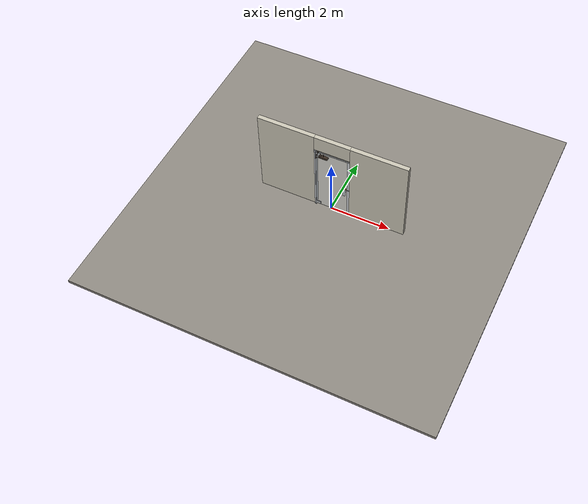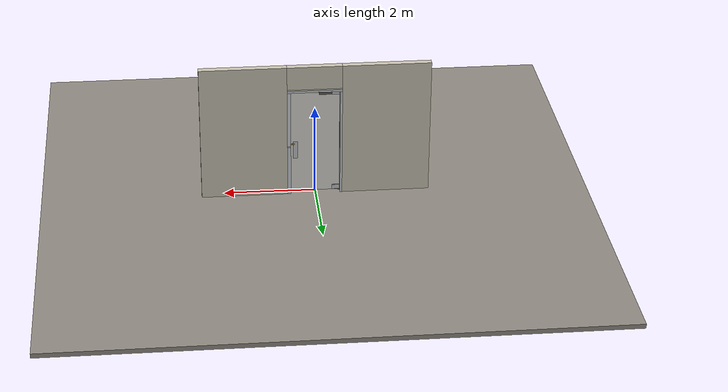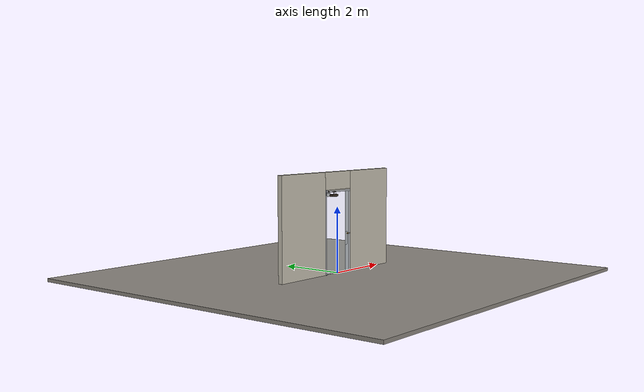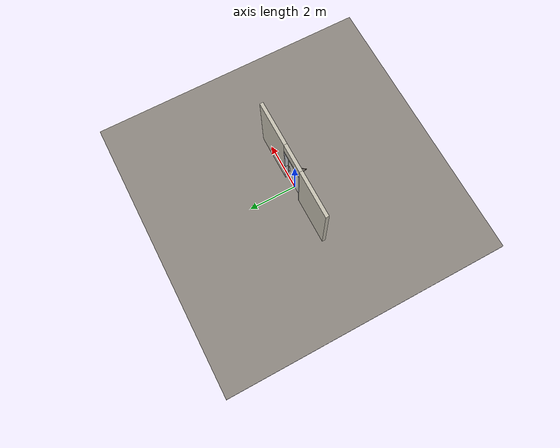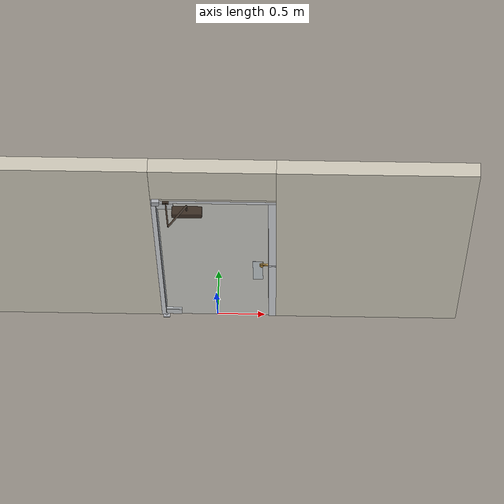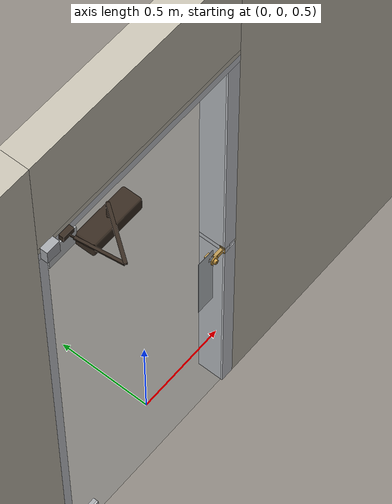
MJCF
<?xml version="1.0" ?>
<mujoco model="db0016_swing_single_full">
  <compiler angle="radian" meshdir="../../hardware" texturedir="../../textures" autolimits="true" inertiafromgeom="false"/>
  <option timestep="0.002" integrator="implicitfast" cone="elliptic" impratio="10" noslip_iterations="3">
    <flag multiccd="enable"/>
  </option>
  <size memory="16M"/>
  <default>
    <geom condim="4" solref="0.005 1" solimp="0.95 0.99 0.001"/>
    <joint solreflimit="0.005 1" solimplimit="0.95 0.99 0.001"/>
    <tendon solreflimit="0.005 1"/>
    <equality solref="0.002 1"/>
  </default>
  <visual>
    <headlight ambient="0.4 0.4 0.4" diffuse="0.7 0.7 0.7" specular="0.2 0.2 0.2"/>
    <quality shadowsize="4096"/>
    <map znear="0.01" zfar="60"/>
  </visual>
  <asset>
    <mesh name="closer_body_fdc4667657" file="closer_body_fdc4667657.obj"/>
    <mesh name="cyl_face_e9e5036966" file="cyl_face_e9e5036966.obj"/>
    <mesh name="thumbturn_eb5c9899a3" file="thumbturn_eb5c9899a3.obj"/>
    <material name="mat_floor" rgba="0.55 0.53 0.5 1" specular="0.2" shininess="0.15" reflectance="0"/>
    <material name="mat_wall" rgba="0.78 0.76 0.7 1" specular="0.2" shininess="0.1" reflectance="0"/>
    <material name="mat_leaf" rgba="0.85 0.92 0.95 0.25" specular="0.2" shininess="0.95" reflectance="0.1"/>
    <material name="mat_glass_leaf" rgba="0.85 0.92 0.95 0.25" specular="0.2" shininess="0.95" reflectance="0.1"/>
    <material name="mat_patch" rgba="0.75 0.76 0.77 1" specular="0.8" shininess="0.65" reflectance="0.4"/>
    <material name="mat_hinge" rgba="0.65 0.66 0.68 1" specular="0.74" shininess="0.5" reflectance="0.36"/>
    <material name="mat_op_stainless" rgba="0.75 0.76 0.77 1" specular="0.8" shininess="0.65" reflectance="0.4"/>
    <material name="mat_deadbolt" rgba="0.85 0.66 0.3 1" specular="0.8" shininess="0.75" reflectance="0.4"/>
    <material name="mat_frame" rgba="0.8 0.81 0.83 1" specular="0.8" shininess="0.6" reflectance="0.4"/>
    <material name="mat_closer" rgba="0.22 0.17 0.13 1" specular="0.8" shininess="0.6" reflectance="0.4"/>
    <texture name="skybox" type="skybox" builtin="gradient" rgb1="0.6 0.7 0.85" rgb2="0.9 0.92 0.95" width="256" height="256"/>
  </asset>
  <worldbody>
    <light name="sun" pos="1.5 -2.5 4" dir="-0.3 0.5 -0.8" directional="true" diffuse="0.8 0.8 0.8" specular="0.3 0.3 0.3" castshadow="true"/>
    <light name="fill" pos="-1.5 2.5 3" dir="0.3 -0.5 -0.7" directional="true" diffuse="0.35 0.35 0.4" castshadow="false"/>
    <camera name="robot_view" pos="0 -2.863313 2.043887" xyaxes="1 0 0 0 0.26963 0.962964" fovy="52"/>
    <camera name="far_view" pos="0 2.982312 2.043887" xyaxes="-1 0 0 0 -0.26963 0.962964" fovy="52"/>
    <camera name="iso" pos="2.221337 -2.395663 2.511538" xyaxes="0.741536 0.670913 0 -0.242917 0.268487 0.932151" fovy="46"/>
    <camera name="detail_handle" pos="0.609 -0.7405 1.296" xyaxes="0.97561 0.219512 0 -0.070934 0.315262 0.94635" fovy="38"/>
    <geom name="floor" type="box" size="6 6 0.05" pos="0 0 -0.05" material="mat_floor" group="0" contype="1" conaffinity="1" friction="0.8 0.005 0.0001" density="2400"/>
    <geom name="wall_left" type="box" size="0.9585 0.0725 1.5255" pos="-1.5415 0.0595 1.5255" material="mat_wall" group="0" contype="1" conaffinity="1" friction="0.6 0.005 0.0001" density="800"/>
    <geom name="wall_right" type="box" size="0.9435 0.0725 1.5255" pos="1.5565 0.0595 1.5255" material="mat_wall" group="0" contype="1" conaffinity="1" friction="0.6 0.005 0.0001" density="800"/>
    <geom name="wall_header" type="box" size="0.598 0.0725 0.2625" pos="0.015 0.0595 2.7885" material="mat_wall" group="0" contype="1" conaffinity="1" friction="0.6 0.005 0.0001" density="800"/>
    <geom name="pivot_bottom_socket" type="box" size="0.035 0.035 0.0085" pos="-0.535 -0.013 -0.0015" material="mat_hinge" group="1" contype="0" conaffinity="0" density="7850"/>
    <geom name="pivot_top_bracket" type="box" size="0.035 0.035 0.0355" pos="-0.535 -0.013 2.4905" material="mat_hinge" group="1" contype="0" conaffinity="0" density="7850"/>
    <geom name="leaf_deadbolt_strike_b" type="box" size="0.0155 0.003 0.0005" pos="0.5375 0 1.1375" quat="-0.5 -0.5 0.5 0.5" material="mat_deadbolt" group="1" contype="0" conaffinity="0" density="7800"/>
    <geom name="leaf_deadbolt_strike_l" type="box" size="0.003 0.0155 0.0005" pos="0.5375 0.0125 1.156" quat="-0.5 -0.5 0.5 0.5" material="mat_deadbolt" group="1" contype="0" conaffinity="0" density="7800"/>
    <geom name="leaf_deadbolt_strike_t" type="box" size="0.0155 0.003 0.0005" pos="0.5375 0 1.1745" quat="-0.5 -0.5 0.5 0.5" material="mat_deadbolt" group="1" contype="0" conaffinity="0" density="7800"/>
    <geom name="leaf_deadbolt_strike_r" type="box" size="0.003 0.0155 0.0005" pos="0.5375 -0.0125 1.156" quat="-0.5 -0.5 0.5 0.5" material="mat_deadbolt" group="1" contype="0" conaffinity="0" density="7800"/>
    <geom name="jamb_hinge" type="box" size="0.0225 0.0725 1.2255" pos="-0.5605 0.0595 1.2255" material="mat_frame" group="0" contype="1" conaffinity="1" friction="0.6 0.005 0.0001" density="300"/>
    <geom name="strike_1156_wall_n" type="box" size="0.0375 0.06125 0.0155" pos="0.5755 0.07075 1.156" material="mat_frame" group="0" contype="1" conaffinity="1" friction="0.6 0.005 0.0001" density="300"/>
    <geom name="strike_1156_wall_p" type="box" size="0.0157 0.003 0.0155" pos="0.5537 -0.0125 1.156" material="mat_frame" group="0" contype="1" conaffinity="1" friction="0.6 0.005 0.0001" density="300"/>
    <geom name="strike_1156_back" type="box" size="0.0228 0.0095 0.0155" pos="0.5902 0 1.156" material="mat_frame" group="0" contype="1" conaffinity="1" friction="0.6 0.005 0.0001" density="300"/>
    <geom name="jamb_strike_0" type="box" size="0.0375 0.0725 0.57025" pos="0.5755 0.0595 0.57025" material="mat_frame" group="0" contype="1" conaffinity="1" friction="0.6 0.005 0.0001" density="300"/>
    <geom name="jamb_strike_1" type="box" size="0.0375 0.0725 0.63975" pos="0.5755 0.0595 1.81125" material="mat_frame" group="0" contype="1" conaffinity="1" friction="0.6 0.005 0.0001" density="300"/>
    <geom name="jamb_head" type="box" size="0.598 0.0725 0.0225" pos="0.015 0.0595 2.4735" material="mat_frame" group="0" contype="1" conaffinity="1" friction="0.6 0.005 0.0001" density="300"/>
    <geom name="head_stud" type="box" size="0.598 0.0725 0.015" pos="0.015 0.0595 2.511" material="mat_wall" group="0" contype="1" conaffinity="1" friction="0.6 0.005 0.0001" density="500"/>
    <geom name="closer_bracket" type="box" size="0.03 0.012 0.014" pos="-0.438 -0.025 2.481" material="mat_closer" group="1" contype="0" conaffinity="0" density="2700"/>
    <site name="approach_point" pos="0 -1.5 0" quat="1 0 0 0" size="0.05" rgba="0.2 0.9 0.2 0.5" group="4"/>
    <site name="goal_point" pos="0 1.5 0" quat="1 0 0 0" size="0.05" rgba="0.2 0.9 0.2 0.5" group="4"/>
    <site name="door_plane_center" pos="0 0 1.2255" quat="1 0 0 0" size="0.02" rgba="0.2 0.9 0.2 0.5" group="4"/>
    <body name="leaf" pos="-0.538 0 0">
      <inertial pos="0.368655 -0.042628 2.083598" mass="84.025582" quat="-0.462117 0.434823 0.544388 0.548652" diaginertia="2.906674451 30.52893032 33.303114836"/>
      <joint name="leaf_hinge" type="hinge" axis="0 0 -1" pos="0.003 -0.013 0" limited="true" range="0 1.745329" solreflimit="0.02 1" damping="12.570702" frictionloss="1.667396" stiffness="17.118706" springref="-2.550426" armature="0.02"/>
      <geom name="leaf_glass" type="box" size="0.5335 0.006 1.219" pos="0.5395 0 1.228" material="mat_glass_leaf" group="0" contype="1" conaffinity="1" friction="0.4 0.005 0.0001" density="1"/>
      <geom name="leaf_patch_bot" type="box" size="0.08 0.014 0.05" pos="0.086 0 0.069" material="mat_patch" group="1" contype="0" conaffinity="0" density="1"/>
      <geom name="leaf_patch_top" type="box" size="0.08 0.014 0.05" pos="0.086 0 2.387" material="mat_patch" group="1" contype="0" conaffinity="0" density="1"/>
      <geom name="pivot_bottom" type="cylinder" size="0.014 0.004" pos="0.003 -0.013 0.004" material="mat_hinge" group="1" contype="0" conaffinity="0" density="7850"/>
      <geom name="pivot_top" type="cylinder" size="0.014 0.004" pos="0.003 -0.013 2.451" material="mat_hinge" group="1" contype="0" conaffinity="0" density="7850"/>
      <geom name="leaf_push_plate_p" type="box" size="0.05 0.0008 0.2" pos="0.968 0.0068 1.016" material="mat_op_stainless" group="1" contype="0" conaffinity="0" density="7900"/>
      <geom name="leaf_deadbolt_faceplate" type="box" size="0.0006 0.004 0.0245" pos="1.0724 0 1.156" material="mat_deadbolt" group="1" contype="0" conaffinity="0" density="8500"/>
      <geom name="leaf_deadbolt_cylinder_face" type="mesh" mesh="cyl_face_e9e5036966" pos="1.008 -0.006 1.156" quat="0.707107 0.707107 0 0" material="mat_deadbolt" group="1" contype="0" conaffinity="0" density="7100"/>
      <geom name="closer_body" type="mesh" mesh="closer_body_fdc4667657" pos="0.3 -0.006 2.358" quat="0.707107 0.707107 0 0" material="mat_closer" group="1" contype="0" conaffinity="0" density="2000"/>
      <geom name="closer_body_col" type="box" size="0.145 0.05 0.035" pos="0.3 -0.056 2.358" material="mat_closer" group="3" contype="1" conaffinity="1" rgba="0.8 0.3 0.3 0.25" friction="0.6 0.005 0.0001" density="2000"/>
      <geom name="closer_pinion_shaft" type="cylinder" size="0.008 0.0615" pos="0.3 -0.056 2.4195" material="mat_closer" group="1" contype="0" conaffinity="0" density="2700"/>
      <site name="leaf_push_plate_push_p" pos="0.968 0.006 1.016" quat="1 0 0 0" size="0.012" rgba="0.2 0.9 0.2 0.5" group="4"/>
      <site name="leaf_edge_mid" pos="1.073 0 1.219" quat="1 0 0 0" size="0.02" rgba="0.2 0.9 0.2 0.5" group="4"/>
      <body name="leaf_deadbolt" pos="1.073 0 1.156">
        <inertial pos="-0.0277 0 0" mass="0.18836" quat="0 0 0.707107 0.707107" diaginertia="0.000013829 0.000052194 0.000057986"/>
        <joint name="leaf_deadbolt_slide" type="slide" axis="-1 0 0" limited="true" range="0 0.0254" damping="5" frictionloss="1.5" armature="0.1" ref="0.0254"/>
        <geom name="leaf_deadbolt_box" type="box" size="0.0277 0.008 0.0125" pos="-0.0277 0 0" material="mat_deadbolt" group="0" contype="1" conaffinity="1" friction="0.3 0.005 0.0001" density="8500"/>
      </body>
      <body name="leaf_deadbolt_thumbturn" pos="1.008 0.006 1.156">
        <inertial pos="0 0.012928 0" mass="0.178946" quat="0.707107 -0.000001 -0.000001 0.707107" diaginertia="0.000026045 0.000026215 0.000032438"/>
        <joint name="leaf_deadbolt_thumbturn_hinge" type="hinge" axis="0 -1 0" limited="true" range="0 1.5708" damping="0.05" frictionloss="0.35" armature="0.005" ref="1.5708"/>
        <geom name="leaf_deadbolt_thumbturn_mesh" type="mesh" mesh="thumbturn_eb5c9899a3" pos="0 0 0" quat="-0.499999 0.499999 0.500001 0.500001" material="mat_deadbolt" group="0" contype="1" conaffinity="1" friction="0.6 0.005 0.0001" density="7100"/>
        <geom name="leaf_deadbolt_thumbturn_col" type="box" size="0.006 0.012 0.016" pos="0 0.02 0" quat="0.707105 0 -0.707108 0" material="mat_deadbolt" group="3" contype="1" conaffinity="1" rgba="0.8 0.3 0.3 0.25" friction="0.6 0.005 0.0001" density="7100"/>
      </body>
      <body name="closer_arm_main" pos="0.3 -0.056 2.481" quat="0.454107 0 0 -0.890947">
        <inertial pos="0.14 0 0" mass="0.12096" quat="1 0 0 0" diaginertia="0.000003588 0.00079128 0.000792852"/>
        <joint name="closer_pinion" type="hinge" axis="0 0 1" limited="false" damping="0.01" armature="0.002"/>
        <geom name="closer_arm_main_geom" type="box" size="0.14 0.008 0.005" pos="0.14 0 0" material="mat_closer" group="1" contype="0" conaffinity="0" density="2700"/>
        <body name="closer_arm_fore" pos="0.28 0 0" quat="-0.373215 0 0 0.927745">
          <inertial pos="0.128088 0 0" mass="0.076531" quat="1 0 0 0" diaginertia="0.000001771 0.000437665 0.000438201"/>
          <joint name="closer_elbow" type="hinge" axis="0 0 1" limited="false" damping="0.01" armature="0.002"/>
          <geom name="closer_arm_fore_geom" type="box" size="0.1125 0.007 0.004" pos="0.1125 0 0" material="mat_closer" group="1" contype="0" conaffinity="0" density="2700"/>
          <geom name="closer_fore_neck" type="box" size="0.0175 0.003 0.003" pos="0.2425 0 0" material="mat_closer" group="1" contype="0" conaffinity="0" density="2700"/>
          <geom name="closer_fore_pivot" type="cylinder" size="0.005 0.012" pos="0.26 0 0" material="mat_closer" group="1" contype="0" conaffinity="0" density="2700"/>
        </body>
      </body>
    </body>
  </worldbody>
  <equality>
    <joint name="leaf_deadbolt_couple" joint1="leaf_deadbolt_slide" joint2="leaf_deadbolt_thumbturn_hinge" polycoef="0 0.01617 0 0 0" active="true"/>
    <connect name="closer_arm_connect" body1="closer_arm_fore" body2="world" anchor="0.26 0 0" active="true"/>
  </equality>
  <contact>
    <exclude body1="leaf_deadbolt" body2="leaf_deadbolt_thumbturn"/>
    <exclude body1="closer_arm_main" body2="leaf"/>
    <exclude body1="closer_arm_fore" body2="leaf"/>
    <exclude body1="closer_arm_main" body2="closer_arm_fore"/>
  </contact>
  <sensor>
    <jointpos name="leaf_hinge_pos" joint="leaf_hinge"/>
    <jointvel name="leaf_hinge_vel" joint="leaf_hinge"/>
    <jointpos name="leaf_deadbolt_slide_pos" joint="leaf_deadbolt_slide"/>
    <jointvel name="leaf_deadbolt_slide_vel" joint="leaf_deadbolt_slide"/>
    <jointpos name="leaf_deadbolt_thumbturn_hinge_pos" joint="leaf_deadbolt_thumbturn_hinge"/>
    <jointvel name="leaf_deadbolt_thumbturn_hinge_vel" joint="leaf_deadbolt_thumbturn_hinge"/>
  </sensor>
</mujoco>
